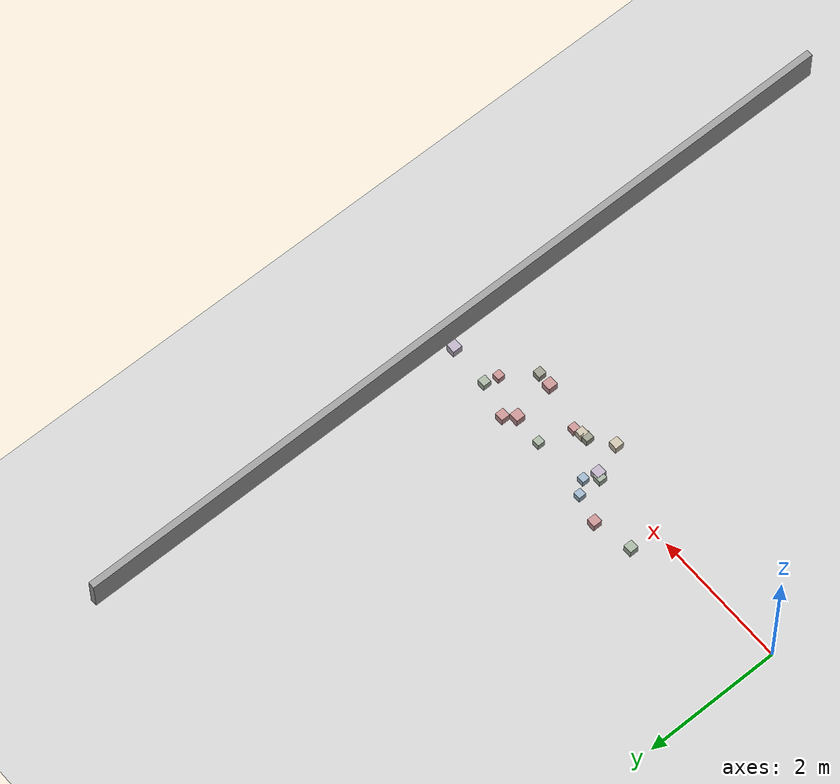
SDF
<sdf version="1.6">
 <world name="small_maze_world">
  <include><uri>model://ground_plane</uri></include>
  <include><uri>model://sun</uri></include>
  <model name="wall_east">
   <static>true</static>
   <pose>6 0 0.25 0 0 0</pose>
   <link name="link">
    <collision name="collision"><geometry><box><size>0.1 12 0.5</size></box></geometry></collision>
    <visual name="visual">
     <geometry><box><size>0.1 12 0.5</size></box></geometry>
     <material><ambient>0.6 0.6 0.6 1</ambient></material>
    </visual>
   </link>
  </model>
  <model name="box_3">
   <static>false</static>
   <pose>5.2 0.28 0.05 0 0 0</pose>
   <link name="link">
    <inertial>
     <mass>0.2</mass>
     <inertia><ixx>0.001</ixx><iyy>0.001</iyy><izz>0.001</izz><ixy>0</ixy><ixz>0</ixz><iyz>0</iyz></inertia>
    </inertial>
    <collision name="collision"><geometry><box><size>0.12 0.12 0.12</size></box></geometry></collision>
    <visual name="visual">
     <geometry><box><size>0.12 0.12 0.12</size></box></geometry>
     <material><ambient>0.64 0.69 0.62 1</ambient><diffuse>0.64 0.69 0.62 1</diffuse></material>
    </visual>
   </link>
  </model>
  <model name="box_55">
   <static>false</static>
   <pose>3.28 0.02 0.05 0 0 0</pose>
   <link name="link">
    <inertial>
     <mass>0.2</mass>
     <inertia><ixx>0.001</ixx><iyy>0.001</iyy><izz>0.001</izz><ixy>0</ixy><ixz>0</ixz><iyz>0</iyz></inertia>
    </inertial>
    <collision name="collision"><geometry><box><size>0.14 0.14 0.14</size></box></geometry></collision>
    <visual name="visual">
     <geometry><box><size>0.14 0.14 0.14</size></box></geometry>
     <material><ambient>0.72 0.68 0.75 1</ambient><diffuse>0.72 0.68 0.75 1</diffuse></material>
    </visual>
   </link>
  </model>
  <model name="box_97">
   <static>false</static>
   <pose>4.68 0.42 0.05 0 0 0</pose>
   <link name="link">
    <inertial>
     <mass>0.2</mass>
     <inertia><ixx>0.001</ixx><iyy>0.001</iyy><izz>0.001</izz><ixy>0</ixy><ixz>0</ixz><iyz>0</iyz></inertia>
    </inertial>
    <collision name="collision"><geometry><box><size>0.13 0.13 0.13</size></box></geometry></collision>
    <visual name="visual">
     <geometry><box><size>0.13 0.13 0.13</size></box></geometry>
     <material><ambient>0.76 0.56 0.56 1</ambient><diffuse>0.76 0.56 0.56 1</diffuse></material>
    </visual>
   </link>
  </model>
  <model name="box_143">
   <static>false</static>
   <pose>4.84 -0.34 0.05 0 0 0</pose>
   <link name="link">
    <inertial>
     <mass>0.2</mass>
     <inertia><ixx>0.001</ixx><iyy>0.001</iyy><izz>0.001</izz><ixy>0</ixy><ixz>0</ixz><iyz>0</iyz></inertia>
    </inertial>
    <collision name="collision"><geometry><box><size>0.12 0.12 0.12</size></box></geometry></collision>
    <visual name="visual">
     <geometry><box><size>0.12 0.12 0.12</size></box></geometry>
     <material><ambient>0.6 0.6 0.54 1</ambient><diffuse>0.6 0.6 0.54 1</diffuse></material>
    </visual>
   </link>
  </model>
  <model name="box_152">
   <static>false</static>
   <pose>5.83 0.25 0.05 0 0 0</pose>
   <link name="link">
    <inertial>
     <mass>0.2</mass>
     <inertia><ixx>0.001</ixx><iyy>0.001</iyy><izz>0.001</izz><ixy>0</ixy><ixz>0</ixz><iyz>0</iyz></inertia>
    </inertial>
    <collision name="collision"><geometry><box><size>0.14 0.14 0.14</size></box></geometry></collision>
    <visual name="visual">
     <geometry><box><size>0.14 0.14 0.14</size></box></geometry>
     <material><ambient>0.72 0.68 0.75 1</ambient><diffuse>0.72 0.68 0.75 1</diffuse></material>
    </visual>
   </link>
  </model>
  <model name="box_171">
   <static>false</static>
   <pose>3.96 -0.16 0.05 0 0 0</pose>
   <link name="link">
    <inertial>
     <mass>0.2</mass>
     <inertia><ixx>0.001</ixx><iyy>0.001</iyy><izz>0.001</izz><ixy>0</ixy><ixz>0</ixz><iyz>0</iyz></inertia>
    </inertial>
    <collision name="collision"><geometry><box><size>0.11 0.11 0.11</size></box></geometry></collision>
    <visual name="visual">
     <geometry><box><size>0.11 0.11 0.11</size></box></geometry>
     <material><ambient>0.76 0.56 0.56 1</ambient><diffuse>0.76 0.56 0.56 1</diffuse></material>
    </visual>
   </link>
  </model>
  <model name="box_199">
   <static>false</static>
   <pose>4.1 0.31 0.05 0 0 0</pose>
   <link name="link">
    <inertial>
     <mass>0.2</mass>
     <inertia><ixx>0.001</ixx><iyy>0.001</iyy><izz>0.001</izz><ixy>0</ixy><ixz>0</ixz><iyz>0</iyz></inertia>
    </inertial>
    <collision name="collision"><geometry><box><size>0.11 0.11 0.11</size></box></geometry></collision>
    <visual name="visual">
     <geometry><box><size>0.11 0.11 0.11</size></box></geometry>
     <material><ambient>0.64 0.69 0.62 1</ambient><diffuse>0.64 0.69 0.62 1</diffuse></material>
    </visual>
   </link>
  </model>
  <model name="box_223">
   <static>false</static>
   <pose>3.75 -0.2 0.05 0 0 0</pose>
   <link name="link">
    <inertial>
     <mass>0.2</mass>
     <inertia><ixx>0.001</ixx><iyy>0.001</iyy><izz>0.001</izz><ixy>0</ixy><ixz>0</ixz><iyz>0</iyz></inertia>
    </inertial>
    <collision name="collision"><geometry><box><size>0.12 0.12 0.12</size></box></geometry></collision>
    <visual name="visual">
     <geometry><box><size>0.12 0.12 0.12</size></box></geometry>
     <material><ambient>0.6 0.6 0.54 1</ambient><diffuse>0.6 0.6 0.54 1</diffuse></material>
    </visual>
   </link>
  </model>
  <model name="box_224">
   <static>false</static>
   <pose>3.2 0.4 0.05 0 0 0</pose>
   <link name="link">
    <inertial>
     <mass>0.2</mass>
     <inertia><ixx>0.001</ixx><iyy>0.001</iyy><izz>0.001</izz><ixy>0</ixy><ixz>0</ixz><iyz>0</iyz></inertia>
    </inertial>
    <collision name="collision"><geometry><box><size>0.11 0.11 0.11</size></box></geometry></collision>
    <visual name="visual">
     <geometry><box><size>0.11 0.11 0.11</size></box></geometry>
     <material><ambient>0.6 0.69 0.77 1</ambient><diffuse>0.6 0.69 0.77 1</diffuse></material>
    </visual>
   </link>
  </model>
  <model name="box_263">
   <static>false</static>
   <pose>3.21 0.05 0.05 0 0 0</pose>
   <link name="link">
    <inertial>
     <mass>0.2</mass>
     <inertia><ixx>0.001</ixx><iyy>0.001</iyy><izz>0.001</izz><ixy>0</ixy><ixz>0</ixz><iyz>0</iyz></inertia>
    </inertial>
    <collision name="collision"><geometry><box><size>0.12 0.12 0.12</size></box></geometry></collision>
    <visual name="visual">
     <geometry><box><size>0.12 0.12 0.12</size></box></geometry>
     <material><ambient>0.64 0.69 0.62 1</ambient><diffuse>0.64 0.69 0.62 1</diffuse></material>
    </visual>
   </link>
  </model>
  <model name="box_277">
   <static>false</static>
   <pose>3.44 -0.42 0.05 0 0 0</pose>
   <link name="link">
    <inertial>
     <mass>0.2</mass>
     <inertia><ixx>0.001</ixx><iyy>0.001</iyy><izz>0.001</izz><ixy>0</ixy><ixz>0</ixz><iyz>0</iyz></inertia>
    </inertial>
    <collision name="collision"><geometry><box><size>0.13 0.13 0.13</size></box></geometry></collision>
    <visual name="visual">
     <geometry><box><size>0.13 0.13 0.13</size></box></geometry>
     <material><ambient>0.78 0.74 0.66 1</ambient><diffuse>0.78 0.74 0.66 1</diffuse></material>
    </visual>
   </link>
  </model>
  <model name="box_312">
   <static>false</static>
   <pose>4.55 0.28 0.05 0 0 0</pose>
   <link name="link">
    <inertial>
     <mass>0.2</mass>
     <inertia><ixx>0.001</ixx><iyy>0.001</iyy><izz>0.001</izz><ixy>0</ixy><ixz>0</ixz><iyz>0</iyz></inertia>
    </inertial>
    <collision name="collision"><geometry><box><size>0.14 0.14 0.14</size></box></geometry></collision>
    <visual name="visual">
     <geometry><box><size>0.14 0.14 0.14</size></box></geometry>
     <material><ambient>0.76 0.56 0.56 1</ambient><diffuse>0.76 0.56 0.56 1</diffuse></material>
    </visual>
   </link>
  </model>
  <model name="box_329">
   <static>false</static>
   <pose>2.22 0.4 0.05 0 0 0</pose>
   <link name="link">
    <inertial>
     <mass>0.2</mass>
     <inertia><ixx>0.001</ixx><iyy>0.001</iyy><izz>0.001</izz><ixy>0</ixy><ixz>0</ixz><iyz>0</iyz></inertia>
    </inertial>
    <collision name="collision"><geometry><box><size>0.13 0.13 0.13</size></box></geometry></collision>
    <visual name="visual">
     <geometry><box><size>0.13 0.13 0.13</size></box></geometry>
     <material><ambient>0.64 0.69 0.62 1</ambient><diffuse>0.64 0.69 0.62 1</diffuse></material>
    </visual>
   </link>
  </model>
  <model name="box_357">
   <static>false</static>
   <pose>5.15 0.08 0.05 0 0 0</pose>
   <link name="link">
    <inertial>
     <mass>0.2</mass>
     <inertia><ixx>0.001</ixx><iyy>0.001</iyy><izz>0.001</izz><ixy>0</ixy><ixz>0</ixz><iyz>0</iyz></inertia>
    </inertial>
    <collision name="collision"><geometry><box><size>0.11 0.11 0.11</size></box></geometry></collision>
    <visual name="visual">
     <geometry><box><size>0.11 0.11 0.11</size></box></geometry>
     <material><ambient>0.76 0.56 0.56 1</ambient><diffuse>0.76 0.56 0.56 1</diffuse></material>
    </visual>
   </link>
  </model>
  <model name="box_386">
   <static>false</static>
   <pose>2.79 0.51 0.05 0 0 0</pose>
   <link name="link">
    <inertial>
     <mass>0.2</mass>
     <inertia><ixx>0.001</ixx><iyy>0.001</iyy><izz>0.001</izz><ixy>0</ixy><ixz>0</ixz><iyz>0</iyz></inertia>
    </inertial>
    <collision name="collision"><geometry><box><size>0.13 0.13 0.13</size></box></geometry></collision>
    <visual name="visual">
     <geometry><box><size>0.13 0.13 0.13</size></box></geometry>
     <material><ambient>0.76 0.56 0.56 1</ambient><diffuse>0.76 0.56 0.56 1</diffuse></material>
    </visual>
   </link>
  </model>
  <model name="box_401">
   <static>false</static>
   <pose>3.84 -0.19 0.05 0 0 0</pose>
   <link name="link">
    <inertial>
     <mass>0.2</mass>
     <inertia><ixx>0.001</ixx><iyy>0.001</iyy><izz>0.001</izz><ixy>0</ixy><ixz>0</ixz><iyz>0</iyz></inertia>
    </inertial>
    <collision name="collision"><geometry><box><size>0.12 0.12 0.12</size></box></geometry></collision>
    <visual name="visual">
     <geometry><box><size>0.12 0.12 0.12</size></box></geometry>
     <material><ambient>0.78 0.74 0.66 1</ambient><diffuse>0.78 0.74 0.66 1</diffuse></material>
    </visual>
   </link>
  </model>
  <model name="box_426">
   <static>false</static>
   <pose>3.34 0.22 0.05 0 0 0</pose>
   <link name="link">
    <inertial>
     <mass>0.2</mass>
     <inertia><ixx>0.001</ixx><iyy>0.001</iyy><izz>0.001</izz><ixy>0</ixy><ixz>0</ixz><iyz>0</iyz></inertia>
    </inertial>
    <collision name="collision"><geometry><box><size>0.11 0.11 0.11</size></box></geometry></collision>
    <visual name="visual">
     <geometry><box><size>0.11 0.11 0.11</size></box></geometry>
     <material><ambient>0.6 0.69 0.77 1</ambient><diffuse>0.6 0.69 0.77 1</diffuse></material>
    </visual>
   </link>
  </model>
  <model name="box_427">
   <static>false</static>
   <pose>4.63 -0.33 0.05 0 0 0</pose>
   <link name="link">
    <inertial>
     <mass>0.2</mass>
     <inertia><ixx>0.001</ixx><iyy>0.001</iyy><izz>0.001</izz><ixy>0</ixy><ixz>0</ixz><iyz>0</iyz></inertia>
    </inertial>
    <collision name="collision"><geometry><box><size>0.14 0.14 0.14</size></box></geometry></collision>
    <visual name="visual">
     <geometry><box><size>0.14 0.14 0.14</size></box></geometry>
     <material><ambient>0.76 0.56 0.56 1</ambient><diffuse>0.76 0.56 0.56 1</diffuse></material>
    </visual>
   </link>
  </model>
 </world>
</sdf>
